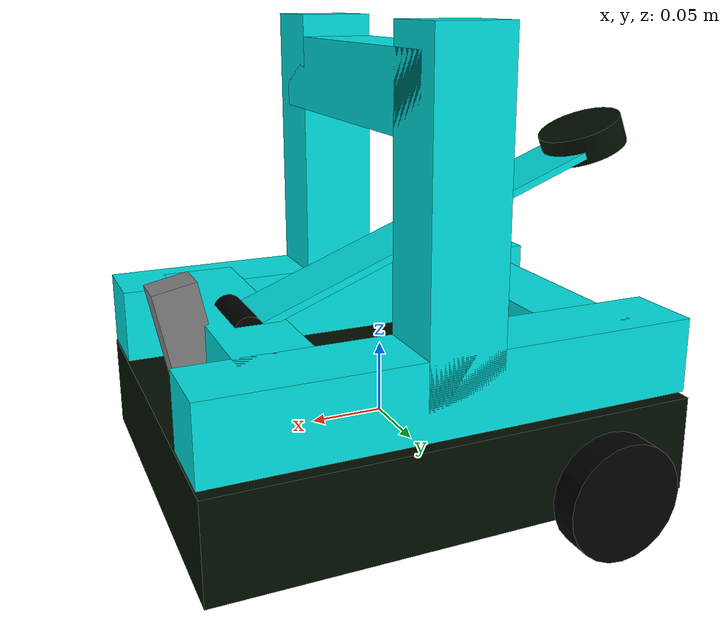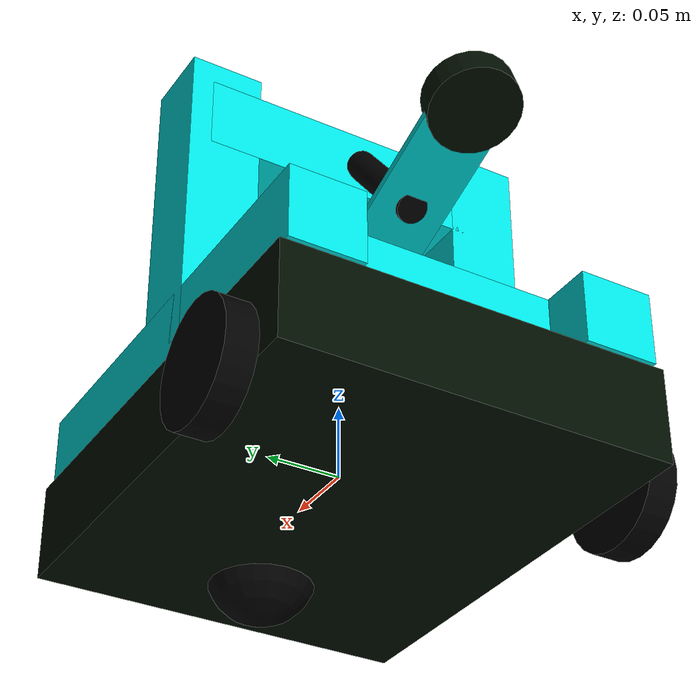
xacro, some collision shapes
<robot xmlns:xacro="http://www.ros.org/wiki/xacro" name="catapulta">

  <xacro:include filename="$(find robot_description)/urdf/depth.urdf.xacro" />

  <material name="green">
    <color rgba="0 0.4 0.2 1"/>
  </material>
  <material name="dark_green">
    <color rgba="0 0.05 0 1"/>
  </material>
  <material name="light_green">
    <color rgba="0.9 1.0 0.9 1"/>
  </material>
  <material name="black">
    <color rgba="0 0 0 1"/>
  </material>
  <material name="Cyan1">
    <color rgba="0 0.9 0.9 1.0"/>
  </material>

  <xacro:property name="h" value="0.32"/>
  <xacro:property name="w" value="0.26"/>
  <xacro:property name="d" value="0.065"/>

  <xacro:property name="basis_fixed_size_1" value="0.32"/>
  <xacro:property name="basis_fixed_size_2" value="0.05"/>
  <xacro:property name="basis_fixed_size_3" value="0.22"/>

 	<link name="base_link">
		<visual>
		    <origin xyz="0 0 0" rpy="0 0 0"/>
			<geometry>
				<box size="${h} ${w} ${d}"/>
			</geometry>
			<material name="dark_green"/>
		</visual>
    <collision>
      <geometry>
        <box size="${h} ${w} ${d}"/>
      </geometry>
    </collision>
    <inertial>
      <mass value="5"/>
      <inertia ixx="${1 / 12 * 5 * (h * w + d * d)}"
               ixy="0.0"
               ixz="0.0"
               iyy="${1 / 12 * 5 * (h * h + d * d)}"
               iyz="0.0"
               izz="${1 / 12 * 5 * (w * w + h * h)}"/>
    </inertial>
	</link>

  <xacro:macro name="make_parallelepiped" params="name h w d color mass">
		<link name="${name}">
			<visual>
				<geometry>
					<box size="${h} ${w} ${d}"/>
				</geometry>
				<material name="${color}"/>
			</visual>
			<collision>
				<geometry>
					<box size="${h} ${w} ${d}"/>
				</geometry>
			</collision>
			<inertial>
				<mass value="${mass}"/>
        <inertia ixx="${mass / 12 * (w * w + d * d)}"
          ixy="0.0"
          ixz="0.0"
          iyy="${1 / 12 * mass * (h * h + d * d)}"
          iyz="0.0"
          izz="${1 / 12 * mass * (w * w + h * h)}"/>
			</inertial>
		</link>
	</xacro:macro>

  <xacro:macro name="make_cylinder" params="name radius length color mass">
		<link name="${name}">
			<visual>
				<geometry>
					<cylinder radius="${radius}" length="${length}"/>
				</geometry>
				<material name="${color}"/>
			</visual>
			<collision>
				<geometry>
					<cylinder radius="${radius}" length="${length}"/>
				</geometry>
			</collision>
			<inertial>
				<mass value="${mass}"/>
				<inertia ixx="${(mass/12)*((3*radius*radius)+(length*length))}"
						 ixy="0"
						 ixz="0"
						 iyy="${(mass/12)*((3*radius*radius)+(length*length))}"
						 iyz="0"
						 izz="${(mass/2)*(radius*radius)}"/>
			</inertial>
		</link>
	</xacro:macro>

  <xacro:macro name="joint" params="parent child type xyz rpy">
		<joint name="${parent}_${child}_joint" type="${type}">
			<parent link="${parent}"/>
			<child link="${child}"/>
			<origin xyz="${xyz}" rpy="${rpy}"/>
		</joint>
	</xacro:macro>

	<xacro:macro name="drive_joint" params="parent child type xyz rpy axis">
		<joint name="${parent}_${child}_joint" type="${type}">
			<parent link="${parent}_link"/>
			<child link="${child}_link"/>
			<origin xyz="${xyz}" rpy="${rpy}"/>
			<axis xyz="${axis}"/>
		</joint>
	</xacro:macro>

  <xacro:make_parallelepiped name="basis1"
            h="${h}"
            w="${basis_fixed_size_2}"
            d="${basis_fixed_size_2}"
            color="Cyan1"
            mass="0.5" />

  <xacro:make_parallelepiped name="basis2"
            h="${basis_fixed_size_2}"
            w="${basis_fixed_size_2}"
            d="${basis_fixed_size_3}"
            color="Cyan1"
            mass="0.5" />

  <xacro:make_parallelepiped name="basis3"
            h="${h}"
            w="${basis_fixed_size_2}"
            d="${basis_fixed_size_2}"
            color="Cyan1"
            mass="0.5" />

  <xacro:make_parallelepiped name="basis4"
            h="${basis_fixed_size_2}"
            w="${basis_fixed_size_2}"
            d="${basis_fixed_size_3}"
            color="Cyan1"
            mass="0.5" />

  <xacro:make_parallelepiped name="basis5"
            h="${basis_fixed_size_2}"
            w="${basis_fixed_size_3}"
            d="${basis_fixed_size_2}"
            color="Cyan1"
            mass="0.5" />

  <xacro:make_parallelepiped name="basis6"
            h="${basis_fixed_size_2}"
            w="${basis_fixed_size_3}"
            d="${basis_fixed_size_2}"
            color="Cyan1"
            mass="0.5" />

  <xacro:make_parallelepiped name="basis7"
            h="${basis_fixed_size_2}"
            w="${basis_fixed_size_3}"
            d="${basis_fixed_size_2}"
            color="Cyan1"
            mass="0.5" />

  <xacro:make_parallelepiped name="basis8"
            h="${basis_fixed_size_2}"
            w="0.27"
            d="0.005"
            color="Cyan1"
            mass="0.5" />

  <xacro:make_cylinder name="basis9"
            radius="0.03" length="0.02"
            color="dark_green"
            mass="0.1" />

  <xacro:make_cylinder name="basis10"
            radius="0.01" length="0.1"
            color="black"
            mass="0.1" />

  <xacro:make_cylinder name="basis11"
            radius="0.01" length="0.05"
            color="black"
            mass="0.1" />

	<xacro:make_cylinder name="right_drive_link"
						 radius="0.04" length="0.02"
						 color="black"
						 mass="0.1" />

	<xacro:make_cylinder name="left_drive_link"
						 radius="0.04" length="0.02"
						 color="black"
						 mass="0.1" />

  <link name="front_driven_link">
    <visual>
      <geometry>
        <sphere radius="0.037"/>
      </geometry>
      <material name="black"/>
    </visual>
    <collision>
      <geometry>
        <sphere radius="0.037"/>
      </geometry>
    </collision>
    <inertial>
      <mass value="0.1"/>
      <inertia ixx="${2 / 10 * 0.037 * 0.037}"
               ixy="0.0"
               ixz="0.0"
               iyy="${2 / 10 * 0.037 * 0.037}"
               iyz="0.0"
               izz="${2 / 10 * 0.037 * 0.037}"/>
    </inertial>
  </link>

  <xacro:joint parent="base_link" child="basis1"
      type="fixed"
      xyz="0 0.1 0.06" rpy="0 0 0"/>

  <xacro:joint parent="base_link" child="basis2"
      type="fixed"
      xyz="0 -0.1 0.16" rpy="0 0 0"/>

  <xacro:joint parent="base_link" child="basis3"
      type="fixed"
      xyz="0 -0.1 0.06" rpy="0 0 0"/>

  <xacro:joint parent="base_link" child="basis4"
      type="fixed"
      xyz="0 0.1 0.16" rpy="0 0 0"/>

  <xacro:joint parent="base_link" child="basis5"
      type="fixed"
      xyz="0.1 0 0.06" rpy="0 0 0"/>

  <xacro:joint parent="base_link" child="basis6"
      type="fixed"
      xyz="-0.1 0 0.06" rpy="0 0 0"/>

  <xacro:joint parent="base_link" child="basis7"
      type="fixed"
      xyz="-0 0 0.23" rpy="0 0 0"/>

  <xacro:joint parent="base_link" child="basis8"
      type="fixed"
      xyz="-0.03 0 0.13" rpy="0.37 0 1.57"/>

  <xacro:joint parent="base_link" child="basis9"
      type="fixed"
      xyz="-0.16 0 0.184" rpy="0.37 0 1.57"/>

  <xacro:joint parent="base_link" child="basis10"
      type="fixed"
      xyz="-0.06 0 0.188" rpy="0.67 0 1.57"/>

  <xacro:joint parent="base_link" child="basis11"
      type="fixed"
      xyz="0.1 0 0.081" rpy="1.57 0 0"/>

  <joint name="right_drive_joint" type="continuous">
    <parent link="base_link"/>
    <child link="right_drive_link"/>
    <origin xyz="-0.1 -0.14 -0.02" rpy="1.57 0 0"/>
    <axis xyz="0 0 -2"/>
  </joint>

  <joint name="left_drive_joint" type="continuous">
    <parent link="base_link"/>
    <child link="left_drive_link"/>
    <origin xyz="-0.1 0.14 -0.02" rpy="1.57 0 0"/>
    <axis xyz="0 0 -2"/>
  </joint>

  <joint name="base_driven_joint" type="fixed">
    <parent link="base_link"/>
    <child link="front_driven_link"/>
    <origin xyz="0.1 0 -0.02" rpy="0 0 0"/>
  </joint>

  <gazebo reference="front_driven_link">
    <mu1 value="0.001"/>
    <mu2 value="0.001"/>
  </gazebo>

  <sensor name="depth" type="depth_camera">
    <pose>0 0.0175 0.0125 0 0 0</pose>
    <update_rate>6</update_rate>
    <always_on>1</always_on>
    <camera>
      <horizontal_fov>1.51843645</horizontal_fov>
      <image>
        <width>848</width>
        <height>480</height>
        <format>R_FLOAT32</format>
      </image>
      <clip>
        <near>0.1</near>
        <far>10</far>
      </clip>
      <lens>
        <intrinsics>
          <fx>421.61578369140625</fx>
          <fy>421.61578369140625</fy>
          <cx>422.2854309082031</cx>
          <cy>236.57237243652344</cy>
          <s>0</s>
        </intrinsics>
      </lens>
    </camera>
  </sensor>

  <gazebo>
    <plugin
      filename="gz-sim-joint-state-publisher-system"
      name="gz::sim::systems::JointStatePublisher">
    </plugin>

    <plugin
      filename="gz-sim-diff-drive-system"
      name="gz::sim::systems::DiffDrive">
      <left_joint>left_drive_joint</left_joint>
      <right_joint>right_drive_joint</right_joint>
      <child_frame_id>robot/base_link</child_frame_id>
      <wheel_separation>0.26</wheel_separation>
      <wheel_radius>0.04</wheel_radius>
      <odom_publish_frequency>64</odom_publish_frequency>
    </plugin>

    <plugin filename="gz-sim-sensors-system"
          name="gz::sim::systems::Sensors">
      <render_engine>ogre2</render_engine>
    </plugin>
  </gazebo>

</robot>

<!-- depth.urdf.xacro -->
<robot xmlns:xacro="http://www.ros.org/wiki/xacro">

    <xacro:property name="M_PI" value="3.1415926535897931" />

    <joint name="depth_joint" type="fixed">
        <parent link="base_link"/>
        <child link="depth_frame"/>
        <origin xyz="0.13 0 0.05" rpy="0 0.2 0"/>
    </joint>

    <material name="aluminum">
      <color rgba="0.5 0.5 0.5 1"/>
    </material>

    <link name="depth_frame">
        <visual>
            <origin xyz="0 0 0" rpy="${M_PI/2} 0 ${M_PI/2}"/>
            <geometry>
                <mesh filename="file://$(find robot_description)/urdf/d455.stl" scale="0.001 0.001 0.001"/>
                <!--box size="0.026 0.124 0.029"/-->
            </geometry>
            <material name="aluminum"/>
        </visual>
        <collision>
            <origin xyz="0 0 0" rpy="${M_PI/2} 0 ${M_PI/2}"/>
            <geometry>
                <box size="0.026 0.124 0.029"/>
            </geometry>
        </collision>
        <inertial>
            <origin xyz="0 0 0" rpy="0 0 0"/>
            <mass value="0.116" />
            <inertia ixx="${(1/12) * 0.116 * (0.026*0.026+0.029*0.029)}" ixy="0.0" ixz="0.0"
                     iyy="${(1/12) * 0.116 * (0.124*0.124+0.029*0.029)}" iyz="0.0"
                     izz="${(1/12) * 0.116 * (0.124*0.124+0.026*0.026)}" />
        </inertial>
    </link>

    <joint name="camera_rgb_joint" type="fixed">
        <parent link="depth_frame"/>
        <child link="camera_rgbd_frame"/>
        <origin xyz="0 0 0" rpy="3.14159 3.14159 3.14159"/>
    </joint>

    <link name="camera_rgbd_frame"/>

    <gazebo reference="camera_rgbd_frame">
        <sensor name='depth_sensor_frame' type='depth_camera'>"
            <gz_frame_id>robot/depth_frame</gz_frame_id>
            <origin xyz="0 0 0" rpy="0 0 0"/>

            <pose> 0 0 0 0 0 0 </pose>
            <always_on>true</always_on>
            <update_rate>10</update_rate>
            <camera>
                <horizontal_fov>1.51843645</horizontal_fov>
                <image>
                    <width>848</width>
                    <height>480</height>
                    <format>R_FLOAT32</format>
                </image>
                <clip>
                    <near>0.1</near>
                    <far>10</far>
                </clip>
                <lens>
                    <intrinsics>
                    <fx>421.61578369140625</fx>
                    <fy>421.61578369140625</fy>
                    <cx>422.2854309082031</cx>
                    <cy>236.57237243652344</cy>
                    <s>0</s>
                    </intrinsics>
                </lens>
                <noise>
                    <type>gaussian</type>
                    <mean>0.0</mean>
                    <stddev>0.007</stddev>
                </noise>
            </camera>
        </sensor>
        <sensor name="color_sensor_frame" type="camera">
            <gz_frame_id>robot/depth_frame</gz_frame_id>
            <pose>0 0 0 0 0 0</pose>
            <update_rate>30</update_rate>
            <always_on>true</always_on>
            <camera>
                <horizontal_fov>1.20427718</horizontal_fov>
                <image>
                    <width>848</width>
                    <height>480</height>
                </image>
                <clip>
                    <near>0.1</near>
                    <far>50</far>
                </clip>
                <lens>
                    <intrinsics>
                    <fx>615.9603271484375</fx>
                    <fy>616.227294921875</fy>
                    <cx>419.83026123046875</cx>
                    <cy>245.1431427001953</cy>
                    <s>0</s>
                    </intrinsics>
                </lens>
            </camera>
        </sensor>
    </gazebo>
</robot>
